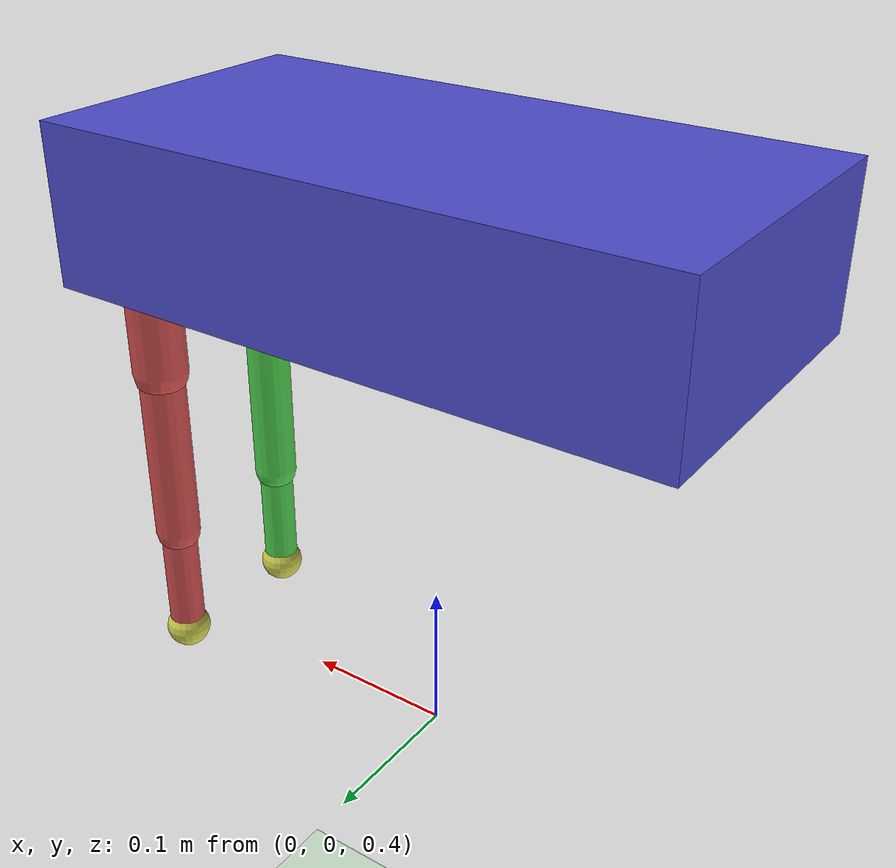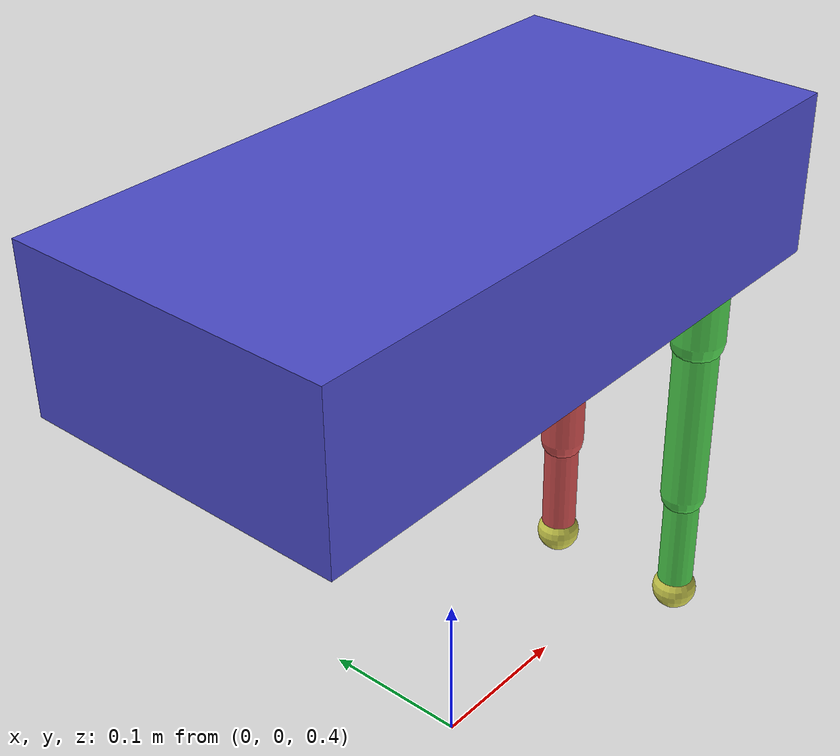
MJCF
<mujoco model="h1">
  <compiler angle="radian" coordinate="local" inertiafromgeom="true"/>
  <option timestep="0.0025" integrator="RK4"/>

  <default>
    <joint armature="0.01" damping="0.1" limited="true"/>
    <geom conaffinity="0" condim="3" friction="1 0.005 0.0001" margin="0.001"/>
    <motor ctrllimited="true" ctrlrange="-1 1"/>
  </default>

  <worldbody>
    <light cutoff="100" diffuse="1 1 1" dir="-0 0 -1.3" directional="true" exponent="1" pos="0 0 1.3" specular=".1 .1 .1"/>
    <geom conaffinity="1" condim="3" name="floor" pos="0 0 0" rgba="0.8 0.9 0.8 1" size="40 40 40" type="plane"/>

    <body name="base" pos="0 0 0.75">
        <joint name="float_base" type="free"/>
        <inertial pos="0.00 0 0.036" mass="3" diaginertia="0.02538 0.03617 0.01306"/>
        <geom type="box" size="0.2 0.1 0.05" rgba="0.3 0.3 0.8 1"/>
        <site name='imu' size='0.01' pos='0.0 0 0.0'/>

        <!-- Left Leg -->
        <body name="L0" pos="0.1 0.05 0">
            <joint name="L0_joint" type="hinge" axis="0 0 1" range="-0.7 0.7"/>
            <geom type="capsule" fromto="0 0 0 0.08 0 0" size="0.02" rgba="0.8 0.3 0.3 1"/>
            <body name="L1" pos="0.08 0 0">
                <joint name="L1_joint" type="hinge" axis="-1 0 0" range="-0.38 0.46"/>
                <geom type="capsule" fromto="0 0 0 0 0 -0.12" size="0.018" rgba="0.8 0.3 0.3 1"/>
                <body name="L2" pos="0 0 -0.12">
                    <joint name="L2_joint" type="hinge" axis="0 1 0" range="-1.57 1.57"/>
                    <geom type="capsule" fromto="0 0 0 0 0 -0.12" size="0.015" rgba="0.8 0.3 0.3 1"/>
                    <body name="L3" pos="0 0 -0.12">
                        <joint name="L3_joint" type="hinge" axis="0 1 0" range="-2.35 0"/>
                        <geom type="capsule" fromto="0 0 0 0 0 -0.08" size="0.012" rgba="0.8 0.3 0.3 1"/>
                        <body name="L4" pos="0 0 -0.08">
                            <joint name="L4_joint" type="hinge" axis="0 -1 0" range="-1.2 1.2"/>
                            <geom type="sphere" size="0.015" rgba="0.8 0.8 0.3 1"/>
                            <site name="left_foot_site" pos="0 0 0" size="0.01"/>
                        </body>
                    </body>
                </body>
            </body>
        </body>

        <!-- Right Leg -->
        <body name="R0" pos="0.1 -0.05 0">
            <joint name="R0_joint" type="hinge" axis="0 0 1" range="-0.7 0.7"/>
            <geom type="capsule" fromto="0 0 0 0.08 0 0" size="0.02" rgba="0.3 0.8 0.3 1"/>
            <body name="R1" pos="0.08 0 0">
                <joint name="R1_joint" type="hinge" axis="-1 0 0" range="-0.38 0.47"/>
                <geom type="capsule" fromto="0 0 0 0 0 -0.12" size="0.018" rgba="0.3 0.8 0.3 1"/>
                <body name="R2" pos="0 0 -0.12">
                    <joint name="R2_joint" type="hinge" axis="0 -1 0" range="-1.57 1.57"/>
                    <geom type="capsule" fromto="0 0 0 0 0 -0.12" size="0.015" rgba="0.3 0.8 0.3 1"/>
                    <body name="R3" pos="0 0 -0.12">
                        <joint name="R3_joint" type="hinge" axis="0 -1 0" range="0 2.35"/>
                        <geom type="capsule" fromto="0 0 0 0 0 -0.08" size="0.012" rgba="0.3 0.8 0.3 1"/>
                        <body name="R4" pos="0 0 -0.08">
                            <joint name="R4_joint" type="hinge" axis="0 1 0" range="-1.2 1.2"/>
                            <geom type="sphere" size="0.015" rgba="0.8 0.8 0.3 1"/>
                            <site name="right_foot_site" pos="0 0 0" size="0.01"/>
                        </body>
                    </body>
                </body>
            </body>
        </body>
    </body>
  </worldbody>

  <actuator>
    <motor joint="L0_joint" gear="50"/>
    <motor joint="L1_joint" gear="80"/>
    <motor joint="L2_joint" gear="100"/>
    <motor joint="L3_joint" gear="80"/>
    <motor joint="L4_joint" gear="50"/>
    <motor joint="R0_joint" gear="50"/>
    <motor joint="R1_joint" gear="80"/>
    <motor joint="R2_joint" gear="100"/>
    <motor joint="R3_joint" gear="80"/>
    <motor joint="R4_joint" gear="50"/>
  </actuator>

  <sensor>
    <jointpos name="L0_pos" joint="L0_joint"/>
    <jointpos name="L1_pos" joint="L1_joint"/>
    <jointpos name="L2_pos" joint="L2_joint"/>
    <jointpos name="L3_pos" joint="L3_joint"/>
    <jointpos name="L4_pos" joint="L4_joint"/>
    <jointpos name="R0_pos" joint="R0_joint"/>
    <jointpos name="R1_pos" joint="R1_joint"/>
    <jointpos name="R2_pos" joint="R2_joint"/>
    <jointpos name="R3_pos" joint="R3_joint"/>
    <jointpos name="R4_pos" joint="R4_joint"/>
  </sensor>
</mujoco>
